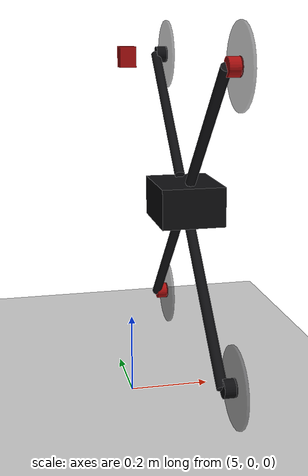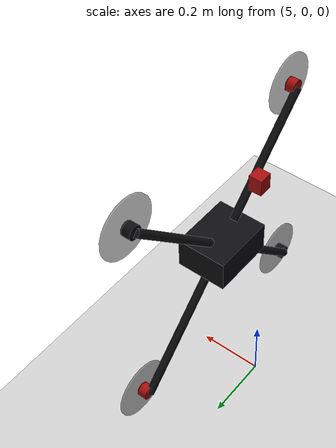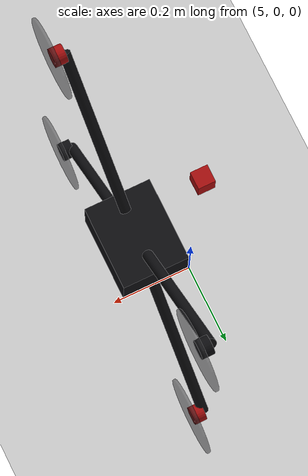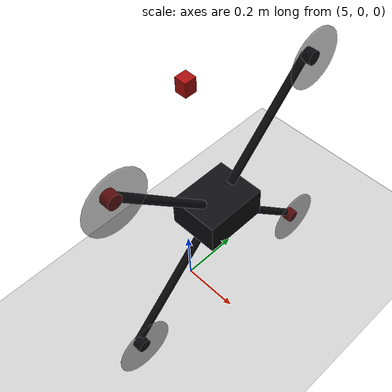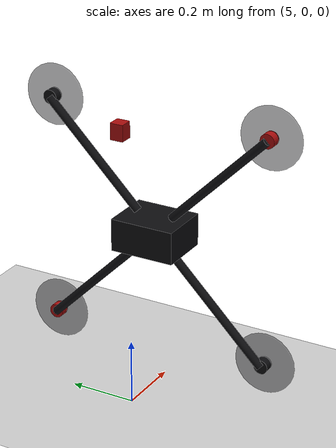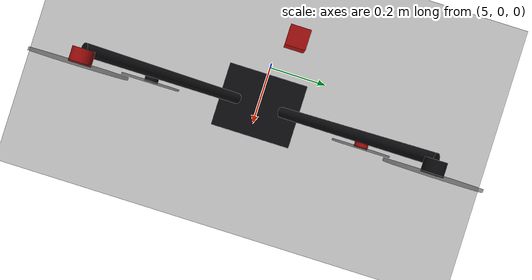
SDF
<?xml version="1.0" encoding="UTF-8"?>
<sdf version="1.9">
  <world name="markerless_demo">
    <physics type="ode">
      <max_step_size>0.004</max_step_size>
      <real_time_factor>1.0</real_time_factor>
      <real_time_update_rate>250</real_time_update_rate>
    </physics>
    <gravity>0 0 -9.8</gravity>
    <magnetic_field>6e-06 2.3e-05 -4.2e-05</magnetic_field>
    <atmosphere type="adiabatic"/>
    <scene>
      <grid>false</grid>
      <ambient>0.4 0.4 0.4 1</ambient>
      <background>0.7 0.7 0.7 1</background>
      <shadows>true</shadows>
    </scene>
    <model name="ground_plane">
      <static>true</static>
      <link name="link">
        <collision name="collision">
          <geometry>
            <plane>
              <normal>0 0 1</normal>
              <size>1 1</size>
            </plane>
          </geometry>
          <surface>
            <friction>
              <ode/>
            </friction>
            <bounce/>
            <contact/>
          </surface>
        </collision>
        <visual name="visual">
          <geometry>
            <plane>
              <normal>0 0 1</normal>
              <size>500 500</size>
            </plane>
          </geometry>
          <material>
            <ambient>0.8 0.8 0.8 1</ambient>
            <diffuse>0.8 0.8 0.8 1</diffuse>
            <specular>0.8 0.8 0.8 1</specular>
          </material>
        </visual>
        <pose>0 0 0 0 -0 0</pose>
        <inertial>
          <pose>0 0 0 0 -0 0</pose>
          <mass>1</mass>
          <inertia>
            <ixx>1</ixx>
            <ixy>0</ixy>
            <ixz>0</ixz>
            <iyy>1</iyy>
            <iyz>0</iyz>
            <izz>1</izz>
          </inertia>
        </inertial>
        <enable_wind>false</enable_wind>
      </link>
      <pose>0 0 0 0 -0 0</pose>
      <self_collide>false</self_collide>
    </model>
    <light name="sunUTC" type="directional">
      <pose>0 0 500 0 -0 0</pose>
      <cast_shadows>true</cast_shadows>
      <intensity>1</intensity>
      <direction>0.001 0.625 -0.78</direction>
      <diffuse>0.904 0.904 0.904 1</diffuse>
      <specular>0.271 0.271 0.271 1</specular>
      <attenuation>
        <range>2000</range>
        <linear>0</linear>
        <constant>1</constant>
        <quadratic>0</quadratic>
      </attenuation>
      <spot>
        <inner_angle>0</inner_angle>
        <outer_angle>0</outer_angle>
        <falloff>0</falloff>
      </spot>
    </light>
    <spherical_coordinates>
      <surface_model>EARTH_WGS84</surface_model>
      <world_frame_orientation>ENU</world_frame_orientation>
      <latitude_deg>47.397971057728974</latitude_deg>
      <longitude_deg> 8.546163739800146</longitude_deg>
      <elevation>0</elevation>
    </spherical_coordinates>

    <model name="demo_chase_cam">
      <static>true</static>
      <pose>14.445 2.440 3.431 0 0.262 2.533</pose>
      <link name="link">
        <inertial>
          <mass>1</mass>
          <inertia>
            <ixx>0.01</ixx>
            <ixy>0</ixy>
            <ixz>0</ixz>
            <iyy>0.01</iyy>
            <iyz>0</iyz>
            <izz>0.01</izz>
          </inertia>
        </inertial>
        <sensor name="chase_cam" type="camera">
          <pose>0 0 0 0 0 0</pose>
          <camera>
            <horizontal_fov>1.7</horizontal_fov>
            <image>
              <width>960</width>
              <height>540</height>
            </image>
            <clip>
              <near>0.1</near>
              <far>3000</far>
            </clip>
          </camera>
          <always_on>1</always_on>
          <update_rate>30</update_rate>
          <visualize>true</visualize>
        </sensor>
      </link>
    </model>

    <include>
      <uri>model://fpv_target_markerless</uri>
      <name>fpv_target_markerless</name>
      <pose>5 0 0.5 0 0 0</pose>
    </include>
  </world>
</sdf>

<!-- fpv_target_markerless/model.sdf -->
<sdf version='1.9'>
  <model name='fpv_target_markerless'>
    <static>true</static>
    <link name='base'>

      <visual name='body_visual'>
        <pose>0.14 0 0 0 0 -1.570796</pose>
        <geometry>
          <box>
            <size>0.20 0.16 0.10</size>
          </box>
        </geometry>
        <material>
          <ambient>0.03 0.03 0.035 1</ambient>
          <diffuse>0.05 0.05 0.06 1</diffuse>
          <specular>0.25 0.25 0.28 1</specular>
        </material>
      </visual>

      <visual name='arm_ne_visual'>
        <pose>0.14 -0.205061 0.205061 0.785398 0 0</pose>
        <geometry>
          <cylinder>
            <radius>0.013</radius>
            <length>0.42</length>
          </cylinder>
        </geometry>
        <material>
          <ambient>0.03 0.03 0.035 1</ambient>
          <diffuse>0.05 0.05 0.06 1</diffuse>
          <specular>0.25 0.25 0.28 1</specular>
        </material>
      </visual>
      <visual name='arm_se_visual'>
        <pose>0.14 -0.205061 -0.205061 2.356194 0 0</pose>
        <geometry>
          <cylinder>
            <radius>0.013</radius>
            <length>0.42</length>
          </cylinder>
        </geometry>
        <material>
          <ambient>0.03 0.03 0.035 1</ambient>
          <diffuse>0.05 0.05 0.06 1</diffuse>
          <specular>0.25 0.25 0.28 1</specular>
        </material>
      </visual>
      <visual name='arm_sw_visual'>
        <pose>0.14 0.205061 -0.205061 3.926991 0 0</pose>
        <geometry>
          <cylinder>
            <radius>0.013</radius>
            <length>0.42</length>
          </cylinder>
        </geometry>
        <material>
          <ambient>0.03 0.03 0.035 1</ambient>
          <diffuse>0.05 0.05 0.06 1</diffuse>
          <specular>0.25 0.25 0.28 1</specular>
        </material>
      </visual>
      <visual name='arm_nw_visual'>
        <pose>0.14 0.205061 0.205061 5.497787 0 0</pose>
        <geometry>
          <cylinder>
            <radius>0.013</radius>
            <length>0.42</length>
          </cylinder>
        </geometry>
        <material>
          <ambient>0.03 0.03 0.035 1</ambient>
          <diffuse>0.05 0.05 0.06 1</diffuse>
          <specular>0.25 0.25 0.28 1</specular>
        </material>
      </visual>

      <visual name='prop_ne_visual'>
        <pose>0.17 -0.353553 0.353553 0 1.570796 0</pose>
        <geometry>
          <cylinder>
            <radius>0.095</radius>
            <length>0.006</length>
          </cylinder>
        </geometry>
        <transparency>0.5</transparency>
        <material>
          <ambient>0.15 0.15 0.16 1</ambient>
          <diffuse>0.18 0.18 0.19 1</diffuse>
          <specular>0.3 0.3 0.3 1</specular>
        </material>
      </visual>
      <visual name='prop_se_visual'>
        <pose>0.17 -0.353553 -0.353553 0 1.570796 0</pose>
        <geometry>
          <cylinder>
            <radius>0.095</radius>
            <length>0.006</length>
          </cylinder>
        </geometry>
        <transparency>0.5</transparency>
        <material>
          <ambient>0.15 0.15 0.16 1</ambient>
          <diffuse>0.18 0.18 0.19 1</diffuse>
          <specular>0.3 0.3 0.3 1</specular>
        </material>
      </visual>
      <visual name='prop_sw_visual'>
        <pose>0.17 0.353553 -0.353553 0 1.570796 0</pose>
        <geometry>
          <cylinder>
            <radius>0.095</radius>
            <length>0.006</length>
          </cylinder>
        </geometry>
        <transparency>0.5</transparency>
        <material>
          <ambient>0.15 0.15 0.16 1</ambient>
          <diffuse>0.18 0.18 0.19 1</diffuse>
          <specular>0.3 0.3 0.3 1</specular>
        </material>
      </visual>
      <visual name='prop_nw_visual'>
        <pose>0.17 0.353553 0.353553 0 1.570796 0</pose>
        <geometry>
          <cylinder>
            <radius>0.095</radius>
            <length>0.006</length>
          </cylinder>
        </geometry>
        <transparency>0.5</transparency>
        <material>
          <ambient>0.15 0.15 0.16 1</ambient>
          <diffuse>0.18 0.18 0.19 1</diffuse>
          <specular>0.3 0.3 0.3 1</specular>
        </material>
      </visual>

      <!-- 4 motor hubs at the diagonal positions (depth X=0.155). Diagonal
           pair NE/SW painted red as an "enemy" ID accent; SE/NW stay dark
           carbon. -->
      <visual name='hub_ne_visual'>
        <pose>0.155 -0.353553 0.353553 0 1.570796 0</pose>
        <geometry>
          <cylinder>
            <radius>0.022</radius>
            <length>0.03</length>
          </cylinder>
        </geometry>
        <material>
          <ambient>0.25 0.02 0.02 1</ambient>
          <diffuse>0.65 0.05 0.05 1</diffuse>
          <specular>0.3 0.1 0.1 1</specular>
        </material>
      </visual>
      <visual name='hub_se_visual'>
        <pose>0.155 -0.353553 -0.353553 0 1.570796 0</pose>
        <geometry>
          <cylinder>
            <radius>0.022</radius>
            <length>0.03</length>
          </cylinder>
        </geometry>
        <material>
          <ambient>0.03 0.03 0.035 1</ambient>
          <diffuse>0.05 0.05 0.06 1</diffuse>
          <specular>0.25 0.25 0.28 1</specular>
        </material>
      </visual>
      <visual name='hub_sw_visual'>
        <pose>0.155 0.353553 -0.353553 0 1.570796 0</pose>
        <geometry>
          <cylinder>
            <radius>0.022</radius>
            <length>0.03</length>
          </cylinder>
        </geometry>
        <material>
          <ambient>0.25 0.02 0.02 1</ambient>
          <diffuse>0.65 0.05 0.05 1</diffuse>
          <specular>0.3 0.1 0.1 1</specular>
        </material>
      </visual>
      <visual name='hub_nw_visual'>
        <pose>0.155 0.353553 0.353553 0 1.570796 0</pose>
        <geometry>
          <cylinder>
            <radius>0.022</radius>
            <length>0.03</length>
          </cylinder>
        </geometry>
        <material>
          <ambient>0.03 0.03 0.035 1</ambient>
          <diffuse>0.05 0.05 0.06 1</diffuse>
          <specular>0.25 0.25 0.28 1</specular>
        </material>
      </visual>

      <!-- Small camera/antenna nub, red, offset toward the +Y travel
           direction. Reads as an FPV cam pod / antenna. -->
      <visual name='cam_nub_visual'>
        <pose>0 0.03 0.36 0 0 0</pose>
        <geometry>
          <box>
            <size>0.04 0.04 0.05</size>
          </box>
        </geometry>
        <material>
          <ambient>0.25 0.02 0.02 1</ambient>
          <diffuse>0.65 0.05 0.05 1</diffuse>
          <specular>0.3 0.1 0.1 1</specular>
        </material>
      </visual>

    </link>
  </model>
</sdf>
